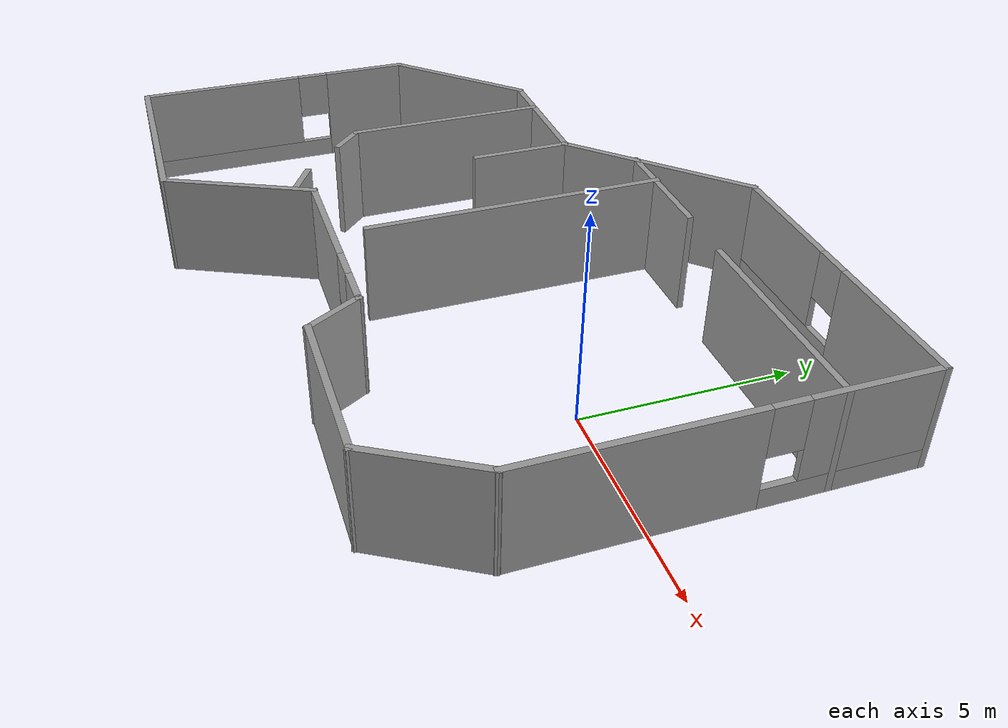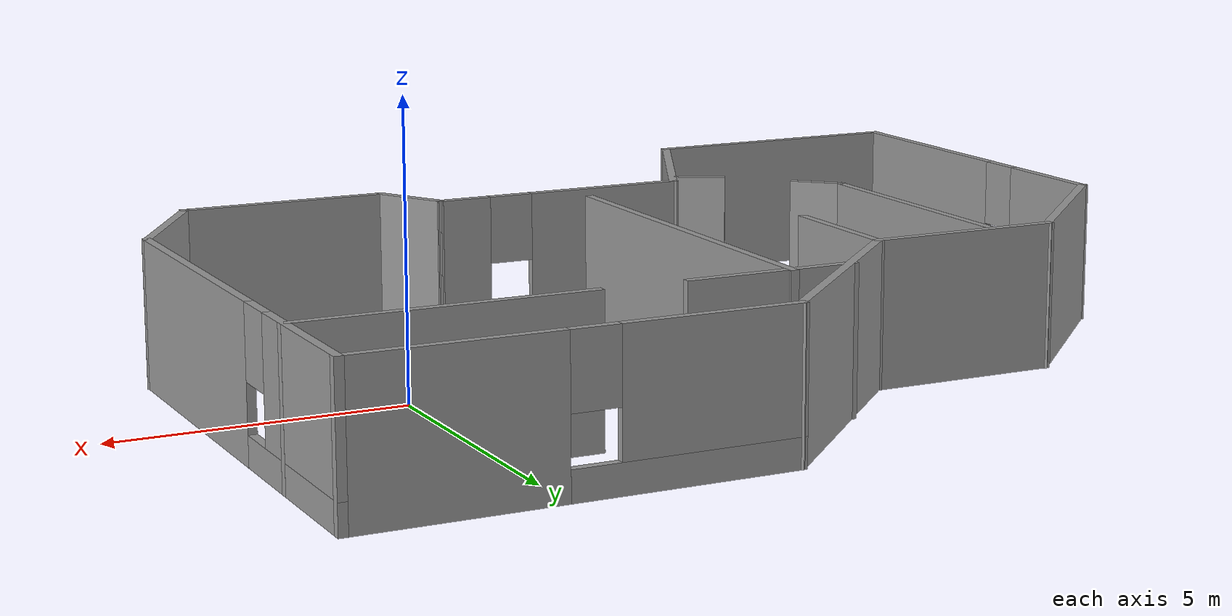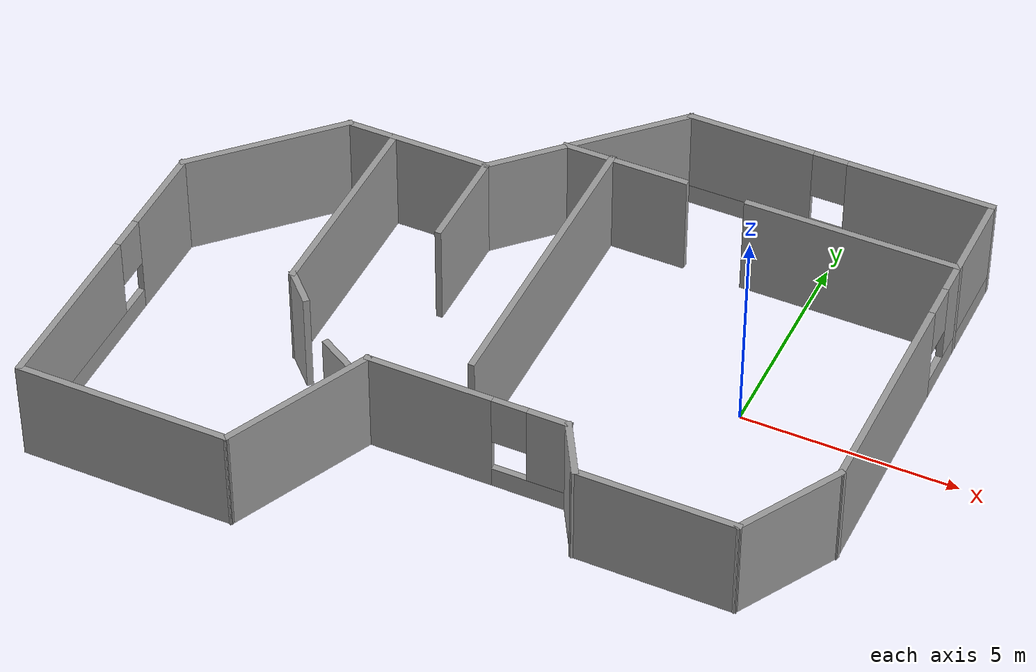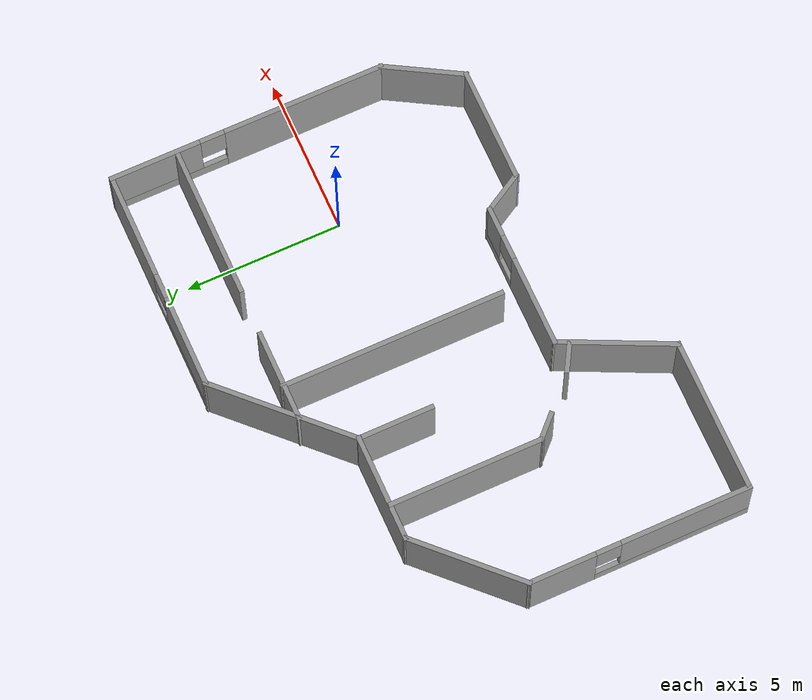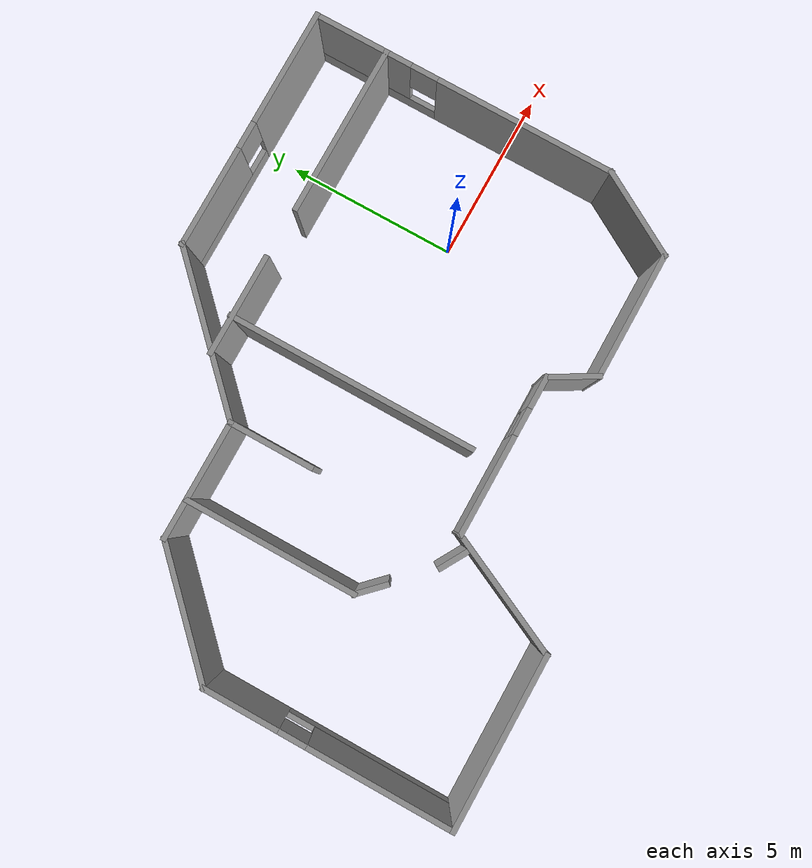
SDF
<?xml version='1.0'?>
<sdf version='1.6'>
  <model name='floor2'>
    <pose frame=''>-4.96772 -0.690313 0 0 -0 0</pose>
    <link name='Wall_0'>
      <pose frame=''>0.427722 -3.30969 0 0 -0 0</pose>
      <visual name='Wall_0_Visual_0'>
        <pose frame=''>-0.897402 0 1.25 0 -0 0</pose>
        <geometry>
          <box>
            <size>2.9552 0.15 2.5</size>
          </box>
        </geometry>
        <material>
          <script>
            <uri>file://media/materials/scripts/gazebo.material</uri>
            <name>Gazebo/Grey</name>
          </script>
          <ambient>1 1 1 1</ambient>
        </material>
        <meta>
          <layer>0</layer>
        </meta>
      </visual>
      <collision name='Wall_0_Collision_0'>
        <geometry>
          <box>
            <size>2.9552 0.15 2.5</size>
          </box>
        </geometry>
        <pose frame=''>-0.897402 0 1.25 0 -0 0</pose>
      </collision>
      <visual name='Wall_0_Visual_1'>
        <pose frame=''>1.4776 0 0.25 0 -0 0</pose>
        <geometry>
          <box>
            <size>1.7948 0.15 0.5</size>
          </box>
        </geometry>
        <material>
          <script>
            <uri>file://media/materials/scripts/gazebo.material</uri>
            <name>Gazebo/Grey</name>
          </script>
          <ambient>1 1 1 1</ambient>
        </material>
        <meta>
          <layer>0</layer>
        </meta>
      </visual>
      <collision name='Wall_0_Collision_1'>
        <geometry>
          <box>
            <size>1.7948 0.15 0.5</size>
          </box>
        </geometry>
        <pose frame=''>1.4776 0 0.25 0 -0 0</pose>
      </collision>
      <visual name='Wall_0_Visual_2'>
        <pose frame=''>1.8776 0 1.5 0 -0 0</pose>
        <geometry>
          <box>
            <size>0.994804 0.15 2</size>
          </box>
        </geometry>
        <material>
          <script>
            <uri>file://media/materials/scripts/gazebo.material</uri>
            <name>Gazebo/Grey</name>
          </script>
          <ambient>1 1 1 1</ambient>
        </material>
        <meta>
          <layer>0</layer>
        </meta>
      </visual>
      <collision name='Wall_0_Collision_2'>
        <geometry>
          <box>
            <size>0.994804 0.15 2</size>
          </box>
        </geometry>
        <pose frame=''>1.8776 0 1.5 0 -0 0</pose>
      </collision>
      <visual name='Wall_0_Visual_3'>
        <pose frame=''>0.980196 0 1.9 0 -0 0</pose>
        <geometry>
          <box>
            <size>0.8 0.15 1.2</size>
          </box>
        </geometry>
        <material>
          <script>
            <uri>file://media/materials/scripts/gazebo.material</uri>
            <name>Gazebo/Grey</name>
          </script>
          <ambient>1 1 1 1</ambient>
        </material>
        <meta>
          <layer>0</layer>
        </meta>
      </visual>
      <collision name='Wall_0_Collision_3'>
        <geometry>
          <box>
            <size>0.8 0.15 1.2</size>
          </box>
        </geometry>
        <pose frame=''>0.980196 0 1.9 0 -0 0</pose>
      </collision>
    </link>
    <link name='Wall_1'>
      <collision name='Wall_1_Collision'>
        <geometry>
          <box>
            <size>1.5 0.15 2.5</size>
          </box>
        </geometry>
        <pose frame=''>0 0 1.25 0 -0 0</pose>
      </collision>
      <visual name='Wall_1_Visual'>
        <pose frame=''>0 0 1.25 0 -0 0</pose>
        <geometry>
          <box>
            <size>1.5 0.15 2.5</size>
          </box>
        </geometry>
        <material>
          <script>
            <uri>file://media/materials/scripts/gazebo.material</uri>
            <name>Gazebo/Grey</name>
          </script>
          <ambient>1 1 1 1</ambient>
        </material>
        <meta>
          <layer>0</layer>
        </meta>
      </visual>
      <pose frame=''>3.06522 -3.89425 0 0 0 -1.0472</pose>
    </link>
    <link name='Wall_10'>
      <collision name='Wall_10_Collision'>
        <geometry>
          <box>
            <size>5 0.15 2.5</size>
          </box>
        </geometry>
        <pose frame=''>0 0 1.25 0 -0 0</pose>
      </collision>
      <visual name='Wall_10_Visual'>
        <pose frame=''>0 0 1.25 0 -0 0</pose>
        <geometry>
          <box>
            <size>5 0.15 2.5</size>
          </box>
        </geometry>
        <material>
          <script>
            <uri>file://media/materials/scripts/gazebo.material</uri>
            <name>Gazebo/Grey</name>
          </script>
          <ambient>1 1 1 1</ambient>
        </material>
        <meta>
          <layer>0</layer>
        </meta>
      </visual>
      <pose frame=''>-5.87411 -6.62899 0 0 -0 0</pose>
    </link>
    <link name='Wall_11'>
      <collision name='Wall_11_Collision'>
        <geometry>
          <box>
            <size>3.8248 0.15 2.5</size>
          </box>
        </geometry>
        <pose frame=''>0 0 1.25 0 -0 0</pose>
      </collision>
      <visual name='Wall_11_Visual'>
        <pose frame=''>0 0 1.25 0 -0 0</pose>
        <geometry>
          <box>
            <size>3.8248 0.15 2.5</size>
          </box>
        </geometry>
        <material>
          <script>
            <uri>file://media/materials/scripts/gazebo.material</uri>
            <name>Gazebo/Grey</name>
          </script>
          <ambient>1 1 1 1</ambient>
        </material>
        <meta>
          <layer>0</layer>
        </meta>
      </visual>
      <pose frame=''>-2.66069 -4.96934 0 0 -0 1.12731</pose>
    </link>
    <link name='Wall_13'>
      <collision name='Wall_13_Collision'>
        <geometry>
          <box>
            <size>5 0.15 2.5</size>
          </box>
        </geometry>
        <pose frame=''>0 0 1.25 0 -0 0</pose>
      </collision>
      <visual name='Wall_13_Visual'>
        <pose frame=''>0 0 1.25 0 -0 0</pose>
        <geometry>
          <box>
            <size>5 0.15 2.5</size>
          </box>
        </geometry>
        <material>
          <script>
            <uri>file://media/materials/scripts/gazebo.material</uri>
            <name>Gazebo/Grey</name>
          </script>
          <ambient>1 1 1 1</ambient>
        </material>
        <meta>
          <layer>0</layer>
        </meta>
      </visual>
      <pose frame=''>5.87796 4.5078 0 0 -0 3.14159</pose>
    </link>
    <link name='Wall_15'>
      <collision name='Wall_15_Collision'>
        <geometry>
          <box>
            <size>5 0.15 2.5</size>
          </box>
        </geometry>
        <pose frame=''>0 0 1.25 0 -0 0</pose>
      </collision>
      <visual name='Wall_15_Visual'>
        <pose frame=''>0 0 1.25 0 -0 0</pose>
        <geometry>
          <box>
            <size>5 0.15 2.5</size>
          </box>
        </geometry>
        <material>
          <script>
            <uri>file://media/materials/scripts/gazebo.material</uri>
            <name>Gazebo/Grey</name>
          </script>
          <ambient>1 1 1 1</ambient>
        </material>
        <meta>
          <layer>0</layer>
        </meta>
      </visual>
      <pose frame=''>-4.46694 0.74601 0 0 0 -1.5708</pose>
    </link>
    <link name='Wall_16'>
      <collision name='Wall_16_Collision'>
        <geometry>
          <box>
            <size>1 0.15 2.5</size>
          </box>
        </geometry>
        <pose frame=''>0 0 1.25 0 -0 0</pose>
      </collision>
      <visual name='Wall_16_Visual'>
        <pose frame=''>0 0 1.25 0 -0 0</pose>
        <geometry>
          <box>
            <size>1 0.15 2.5</size>
          </box>
        </geometry>
        <material>
          <script>
            <uri>file://media/materials/scripts/gazebo.material</uri>
            <name>Gazebo/Grey</name>
          </script>
          <ambient>1 1 1 1</ambient>
        </material>
        <meta>
          <layer>0</layer>
        </meta>
      </visual>
      <pose frame=''>-4.16641 -1.97951 0 0 0 -0.785398</pose>
    </link>
    <link name='Wall_18'>
      <collision name='Wall_18_Collision'>
        <geometry>
          <box>
            <size>1 0.15 2.5</size>
          </box>
        </geometry>
        <pose frame=''>0 0 1.25 0 -0 0</pose>
      </collision>
      <visual name='Wall_18_Visual'>
        <pose frame=''>0 0 1.25 0 -0 0</pose>
        <geometry>
          <box>
            <size>1 0.15 2.5</size>
          </box>
        </geometry>
        <material>
          <script>
            <uri>file://media/materials/scripts/gazebo.material</uri>
            <name>Gazebo/Grey</name>
          </script>
          <ambient>1 1 1 1</ambient>
        </material>
        <meta>
          <layer>0</layer>
        </meta>
      </visual>
      <pose frame=''>-2.47802 -3.47635 0 0 -0 2.61799</pose>
    </link>
    <link name='Wall_2'>
      <collision name='Wall_2_Collision'>
        <geometry>
          <box>
            <size>3.75 0.15 2.5</size>
          </box>
        </geometry>
        <pose frame=''>0 0 1.25 0 -0 0</pose>
      </collision>
      <visual name='Wall_2_Visual'>
        <pose frame=''>0 0 1.25 0 -0 0</pose>
        <geometry>
          <box>
            <size>3.75 0.15 2.5</size>
          </box>
        </geometry>
        <material>
          <script>
            <uri>file://media/materials/scripts/gazebo.material</uri>
            <name>Gazebo/Grey</name>
          </script>
          <ambient>1 1 1 1</ambient>
        </material>
        <meta>
          <layer>0</layer>
        </meta>
      </visual>
      <pose frame=''>5.20272 -4.47882 0 0 -0 0</pose>
    </link>
    <link name='Wall_20'>
      <collision name='Wall_20_Collision'>
        <geometry>
          <box>
            <size>3 0.15 2.5</size>
          </box>
        </geometry>
        <pose frame=''>0 0 1.25 0 -0 0</pose>
      </collision>
      <visual name='Wall_20_Visual'>
        <pose frame=''>0 0 1.25 0 -0 0</pose>
        <geometry>
          <box>
            <size>3 0.15 2.5</size>
          </box>
        </geometry>
        <material>
          <script>
            <uri>file://media/materials/scripts/gazebo.material</uri>
            <name>Gazebo/Grey</name>
          </script>
          <ambient>1 1 1 1</ambient>
        </material>
        <meta>
          <layer>0</layer>
        </meta>
      </visual>
      <pose frame=''>0.51112 4.54298 0 0 -0 0</pose>
    </link>
    <link name='Wall_22'>
      <collision name='Wall_22_Collision'>
        <geometry>
          <box>
            <size>7.25 0.15 2.5</size>
          </box>
        </geometry>
        <pose frame=''>0 0 1.25 0 -0 0</pose>
      </collision>
      <visual name='Wall_22_Visual'>
        <pose frame=''>0 0 1.25 0 -0 0</pose>
        <geometry>
          <box>
            <size>7.25 0.15 2.5</size>
          </box>
        </geometry>
        <material>
          <script>
            <uri>file://media/materials/scripts/gazebo.material</uri>
            <name>Gazebo/Grey</name>
          </script>
          <ambient>1 1 1 1</ambient>
        </material>
        <meta>
          <layer>0</layer>
        </meta>
      </visual>
      <pose frame=''>0.176661 1.02816 0 0 0 -1.5708</pose>
    </link>
    <link name='Wall_24'>
      <collision name='Wall_24_Collision'>
        <geometry>
          <box>
            <size>2.5 0.15 2.5</size>
          </box>
        </geometry>
        <pose frame=''>0 0 1.25 0 -0 0</pose>
      </collision>
      <visual name='Wall_24_Visual'>
        <pose frame=''>0 0 1.25 0 -0 0</pose>
        <geometry>
          <box>
            <size>2.5 0.15 2.5</size>
          </box>
        </geometry>
        <material>
          <script>
            <uri>file://media/materials/scripts/gazebo.material</uri>
            <name>Gazebo/Grey</name>
          </script>
          <ambient>1 1 1 1</ambient>
        </material>
        <meta>
          <layer>0</layer>
        </meta>
      </visual>
      <pose frame=''>-2.22675 2.01838 0 0 0 -1.5708</pose>
    </link>
    <link name='Wall_3'>
      <collision name='Wall_3_Collision'>
        <geometry>
          <box>
            <size>2.75 0.15 2.5</size>
          </box>
        </geometry>
        <pose frame=''>0 0 1.25 0 -0 0</pose>
      </collision>
      <visual name='Wall_3_Visual'>
        <pose frame=''>0 0 1.25 0 -0 0</pose>
        <geometry>
          <box>
            <size>2.75 0.15 2.5</size>
          </box>
        </geometry>
        <material>
          <script>
            <uri>file://media/materials/scripts/gazebo.material</uri>
            <name>Gazebo/Grey</name>
          </script>
          <ambient>1 1 1 1</ambient>
        </material>
        <meta>
          <layer>0</layer>
        </meta>
      </visual>
      <pose frame=''>7.65272 -3.35299 0 0 -0 1.0472</pose>
    </link>
    <link name='Wall_4'>
      <pose frame=''>8.30272 2.19784 0 0 -0 1.5708</pose>
      <visual name='Wall_4_Visual_0'>
        <pose frame=''>-1.87547 0 1.25 0 -0 0</pose>
        <geometry>
          <box>
            <size>5.24906 0.15 2.5</size>
          </box>
        </geometry>
        <material>
          <script>
            <uri>file://media/materials/scripts/gazebo.material</uri>
            <name>Gazebo/Grey</name>
          </script>
          <ambient>1 1 1 1</ambient>
        </material>
        <meta>
          <layer>0</layer>
        </meta>
      </visual>
      <collision name='Wall_4_Collision_0'>
        <geometry>
          <box>
            <size>5.24906 0.15 2.5</size>
          </box>
        </geometry>
        <pose frame=''>-1.87547 0 1.25 0 -0 0</pose>
      </collision>
      <visual name='Wall_4_Visual_1'>
        <pose frame=''>2.62453 0 0.25 0 -0 0</pose>
        <geometry>
          <box>
            <size>3.75094 0.15 0.5</size>
          </box>
        </geometry>
        <material>
          <script>
            <uri>file://media/materials/scripts/gazebo.material</uri>
            <name>Gazebo/Grey</name>
          </script>
          <ambient>1 1 1 1</ambient>
        </material>
        <meta>
          <layer>0</layer>
        </meta>
      </visual>
      <collision name='Wall_4_Collision_1'>
        <geometry>
          <box>
            <size>3.75094 0.15 0.5</size>
          </box>
        </geometry>
        <pose frame=''>2.62453 0 0.25 0 -0 0</pose>
      </collision>
      <visual name='Wall_4_Visual_2'>
        <pose frame=''>3.02453 0 1.5 0 -0 0</pose>
        <geometry>
          <box>
            <size>2.95094 0.15 2</size>
          </box>
        </geometry>
        <material>
          <script>
            <uri>file://media/materials/scripts/gazebo.material</uri>
            <name>Gazebo/Grey</name>
          </script>
          <ambient>1 1 1 1</ambient>
        </material>
        <meta>
          <layer>0</layer>
        </meta>
      </visual>
      <collision name='Wall_4_Collision_2'>
        <geometry>
          <box>
            <size>2.95094 0.15 2</size>
          </box>
        </geometry>
        <pose frame=''>3.02453 0 1.5 0 -0 0</pose>
      </collision>
      <visual name='Wall_4_Visual_3'>
        <pose frame=''>1.14906 0 1.9 0 -0 0</pose>
        <geometry>
          <box>
            <size>0.8 0.15 1.2</size>
          </box>
        </geometry>
        <material>
          <script>
            <uri>file://media/materials/scripts/gazebo.material</uri>
            <name>Gazebo/Grey</name>
          </script>
          <ambient>1 1 1 1</ambient>
        </material>
        <meta>
          <layer>0</layer>
        </meta>
      </visual>
      <collision name='Wall_4_Collision_3'>
        <geometry>
          <box>
            <size>0.8 0.15 1.2</size>
          </box>
        </geometry>
        <pose frame=''>1.14906 0 1.9 0 -0 0</pose>
      </collision>
    </link>
    <link name='Wall_5'>
      <pose frame=''>4.75272 6.62284 0 0 -0 3.14159</pose>
      <visual name='Wall_5_Visual_0'>
        <pose frame=''>-1.90555 0 1.25 0 -0 0</pose>
        <geometry>
          <box>
            <size>3.43889 0.15 2.5</size>
          </box>
        </geometry>
        <material>
          <script>
            <uri>file://media/materials/scripts/gazebo.material</uri>
            <name>Gazebo/Grey</name>
          </script>
          <ambient>1 1 1 1</ambient>
        </material>
        <meta>
          <layer>0</layer>
        </meta>
      </visual>
      <collision name='Wall_5_Collision_0'>
        <geometry>
          <box>
            <size>3.43889 0.15 2.5</size>
          </box>
        </geometry>
        <pose frame=''>-1.90555 0 1.25 0 -0 0</pose>
      </collision>
      <visual name='Wall_5_Visual_1'>
        <pose frame=''>1.71945 0 0.25 0 -0 0</pose>
        <geometry>
          <box>
            <size>3.81111 0.15 0.5</size>
          </box>
        </geometry>
        <material>
          <script>
            <uri>file://media/materials/scripts/gazebo.material</uri>
            <name>Gazebo/Grey</name>
          </script>
          <ambient>1 1 1 1</ambient>
        </material>
        <meta>
          <layer>0</layer>
        </meta>
      </visual>
      <collision name='Wall_5_Collision_1'>
        <geometry>
          <box>
            <size>3.81111 0.15 0.5</size>
          </box>
        </geometry>
        <pose frame=''>1.71945 0 0.25 0 -0 0</pose>
      </collision>
      <visual name='Wall_5_Visual_2'>
        <pose frame=''>2.11945 0 1.5 0 -0 0</pose>
        <geometry>
          <box>
            <size>3.01111 0.15 2</size>
          </box>
        </geometry>
        <material>
          <script>
            <uri>file://media/materials/scripts/gazebo.material</uri>
            <name>Gazebo/Grey</name>
          </script>
          <ambient>1 1 1 1</ambient>
        </material>
        <meta>
          <layer>0</layer>
        </meta>
      </visual>
      <collision name='Wall_5_Collision_2'>
        <geometry>
          <box>
            <size>3.01111 0.15 2</size>
          </box>
        </geometry>
        <pose frame=''>2.11945 0 1.5 0 -0 0</pose>
      </collision>
      <visual name='Wall_5_Visual_3'>
        <pose frame=''>0.213894 0 1.9 0 -0 0</pose>
        <geometry>
          <box>
            <size>0.8 0.15 1.2</size>
          </box>
        </geometry>
        <material>
          <script>
            <uri>file://media/materials/scripts/gazebo.material</uri>
            <name>Gazebo/Grey</name>
          </script>
          <ambient>1 1 1 1</ambient>
        </material>
        <meta>
          <layer>0</layer>
        </meta>
      </visual>
      <collision name='Wall_5_Collision_3'>
        <geometry>
          <box>
            <size>0.8 0.15 1.2</size>
          </box>
        </geometry>
        <pose frame=''>0.213894 0 1.9 0 -0 0</pose>
      </collision>
    </link>
    <link name='Wall_6'>
      <collision name='Wall_6_Collision'>
        <geometry>
          <box>
            <size>5 0.15 2.5</size>
          </box>
        </geometry>
        <pose frame=''>0 0 1.25 0 -0 0</pose>
      </collision>
      <visual name='Wall_6_Visual'>
        <pose frame=''>0 0 1.25 0 -0 0</pose>
        <geometry>
          <box>
            <size>5 0.15 2.5</size>
          </box>
        </geometry>
        <material>
          <script>
            <uri>file://media/materials/scripts/gazebo.material</uri>
            <name>Gazebo/Grey</name>
          </script>
          <ambient>1 1 1 1</ambient>
        </material>
        <meta>
          <layer>0</layer>
        </meta>
      </visual>
      <pose frame=''>-0.512012 4.90811 0 0 0 -2.35619</pose>
    </link>
    <link name='Wall_7'>
      <collision name='Wall_7_Collision'>
        <geometry>
          <box>
            <size>3.5 0.15 2.5</size>
          </box>
        </geometry>
        <pose frame=''>0 0 1.25 0 -0 0</pose>
      </collision>
      <visual name='Wall_7_Visual'>
        <pose frame=''>0 0 1.25 0 -0 0</pose>
        <geometry>
          <box>
            <size>3.5 0.15 2.5</size>
          </box>
        </geometry>
        <material>
          <script>
            <uri>file://media/materials/scripts/gazebo.material</uri>
            <name>Gazebo/Grey</name>
          </script>
          <ambient>1 1 1 1</ambient>
        </material>
        <meta>
          <layer>0</layer>
        </meta>
      </visual>
      <pose frame=''>-3.90175 3.19338 0 0 -0 3.14159</pose>
    </link>
    <link name='Wall_8'>
      <collision name='Wall_8_Collision'>
        <geometry>
          <box>
            <size>4 0.15 2.5</size>
          </box>
        </geometry>
        <pose frame=''>0 0 1.25 0 -0 0</pose>
      </collision>
      <visual name='Wall_8_Visual'>
        <pose frame=''>0 0 1.25 0 -0 0</pose>
        <geometry>
          <box>
            <size>4 0.15 2.5</size>
          </box>
        </geometry>
        <material>
          <script>
            <uri>file://media/materials/scripts/gazebo.material</uri>
            <name>Gazebo/Grey</name>
          </script>
          <ambient>1 1 1 1</ambient>
        </material>
        <meta>
          <layer>0</layer>
        </meta>
      </visual>
      <pose frame=''>-6.93793 1.8322 0 0 0 -2.35619</pose>
    </link>
    <link name='Wall_9'>
      <pose frame=''>-8.29911 -3.07898 0 0 0 -1.5708</pose>
      <visual name='Wall_9_Visual_0'>
        <pose frame=''>-2.51668 0 1.25 0 -0 0</pose>
        <geometry>
          <box>
            <size>2.21664 0.15 2.5</size>
          </box>
        </geometry>
        <material>
          <script>
            <uri>file://media/materials/scripts/gazebo.material</uri>
            <name>Gazebo/Grey</name>
          </script>
          <ambient>1 1 1 1</ambient>
        </material>
        <meta>
          <layer>0</layer>
        </meta>
      </visual>
      <collision name='Wall_9_Collision_0'>
        <geometry>
          <box>
            <size>2.21664 0.15 2.5</size>
          </box>
        </geometry>
        <pose frame=''>-2.51668 0 1.25 0 -0 0</pose>
      </collision>
      <visual name='Wall_9_Visual_1'>
        <pose frame=''>1.10832 0 0.25 0 -0 0</pose>
        <geometry>
          <box>
            <size>5.03336 0.15 0.5</size>
          </box>
        </geometry>
        <material>
          <script>
            <uri>file://media/materials/scripts/gazebo.material</uri>
            <name>Gazebo/Grey</name>
          </script>
          <ambient>1 1 1 1</ambient>
        </material>
        <meta>
          <layer>0</layer>
        </meta>
      </visual>
      <collision name='Wall_9_Collision_1'>
        <geometry>
          <box>
            <size>5.03336 0.15 0.5</size>
          </box>
        </geometry>
        <pose frame=''>1.10832 0 0.25 0 -0 0</pose>
      </collision>
      <visual name='Wall_9_Visual_2'>
        <pose frame=''>1.50832 0 1.5 0 -0 0</pose>
        <geometry>
          <box>
            <size>4.23336 0.15 2</size>
          </box>
        </geometry>
        <material>
          <script>
            <uri>file://media/materials/scripts/gazebo.material</uri>
            <name>Gazebo/Grey</name>
          </script>
          <ambient>1 1 1 1</ambient>
        </material>
        <meta>
          <layer>0</layer>
        </meta>
      </visual>
      <collision name='Wall_9_Collision_2'>
        <geometry>
          <box>
            <size>4.23336 0.15 2</size>
          </box>
        </geometry>
        <pose frame=''>1.50832 0 1.5 0 -0 0</pose>
      </collision>
      <visual name='Wall_9_Visual_3'>
        <pose frame=''>-1.00836 0 1.9 0 -0 0</pose>
        <geometry>
          <box>
            <size>0.8 0.15 1.2</size>
          </box>
        </geometry>
        <material>
          <script>
            <uri>file://media/materials/scripts/gazebo.material</uri>
            <name>Gazebo/Grey</name>
          </script>
          <ambient>1 1 1 1</ambient>
        </material>
        <meta>
          <layer>0</layer>
        </meta>
      </visual>
      <collision name='Wall_9_Collision_3'>
        <geometry>
          <box>
            <size>0.8 0.15 1.2</size>
          </box>
        </geometry>
        <pose frame=''>-1.00836 0 1.9 0 -0 0</pose>
      </collision>
    </link>
    <static>1</static>
  </model>
</sdf>
